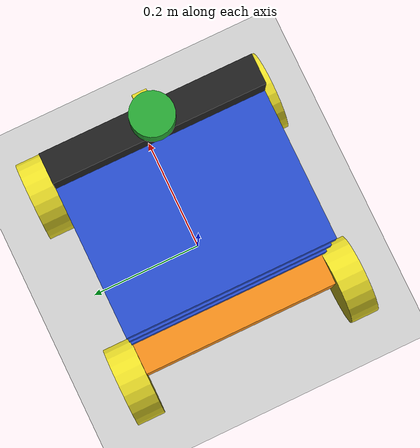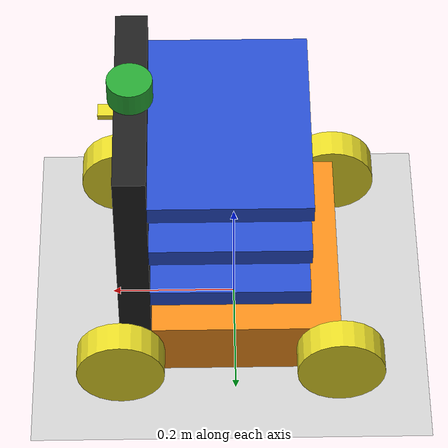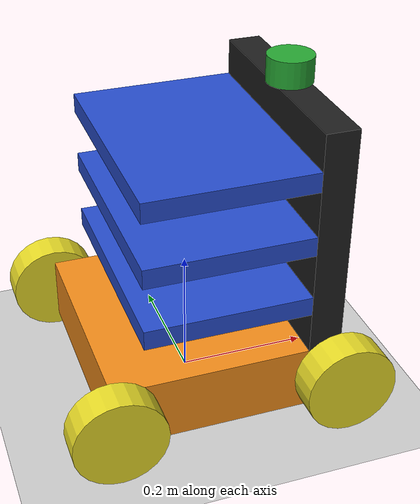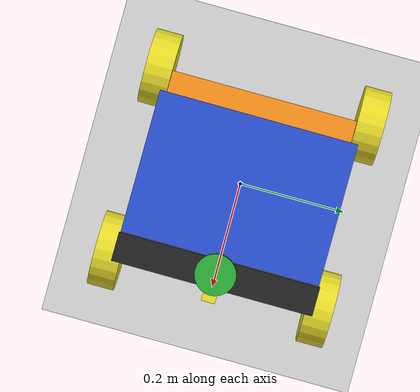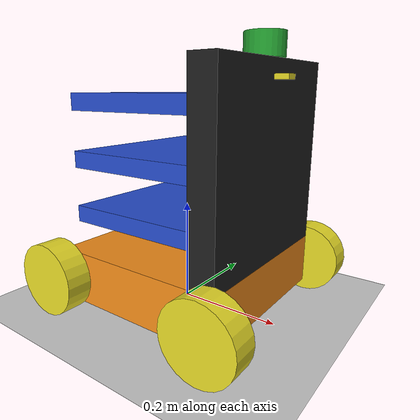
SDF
<sdf version="1.7">
 <world name="default">
  <light name="sun" type="directional">
   <pose>0 0 10 0 -0 0</pose>
   <diffuse>0.8 0.8 0.8 1</diffuse>
   <specular>0.2 0.2 0.2 1</specular>
   <attenuation>
    <range>1000</range>
    <constant>0.9</constant>
    <linear>0.01</linear>
    <quadratic>0.001</quadratic>
   </attenuation>
   <direction>-0.5 0.1 -0.9</direction>
   <spot><inner_angle>0</inner_angle><outer_angle>0</outer_angle><falloff>0</falloff></spot>
  </light>
  <model name="ground_plane">
   <static>1</static>
   <link name="link">
    <collision name="collision">
     <geometry><plane><normal>0 0 1</normal><size>100 100</size></plane></geometry>
     <surface><friction><ode><mu>100</mu><mu2>50</mu2></ode></friction></surface>
    </collision>
    <visual name="visual">
     <cast_shadows>0</cast_shadows>
     <geometry><plane><normal>0 0 1</normal><size>100 100</size></plane></geometry>
     <material>
      <script><uri>file://media/materials/scripts/gazebo.material</uri><name>Gazebo/Grey</name></script>
     </material>
    </visual>
   </link>
  </model>
  <gravity>0 0 -9.8</gravity>
  <magnetic_field>6e-06 2.3e-05 -4.2e-05</magnetic_field>
  <atmosphere type="adiabatic"/>
  <physics type="ode">
   <max_step_size>0.001</max_step_size>
   <real_time_factor>1</real_time_factor>
   <real_time_update_rate>1000</real_time_update_rate>
  </physics>
  <scene><ambient>0.4 0.4 0.4 1</ambient><background>0.7 0.7 0.7 1</background><shadows>1</shadows></scene>
  <audio><device>default</device></audio>
  <spherical_coordinates>
   <surface_model>EARTH_WGS84</surface_model>
   <latitude_deg>0</latitude_deg>
   <longitude_deg>0</longitude_deg>
   <elevation>0</elevation>
   <heading_deg>0</heading_deg>
  </spherical_coordinates>
  <model name="service_robot">
   <link name="base_link">
    <inertial>
     <pose>0.001828 -3e-06 0.058688 0 -0 0</pose>
     <mass>8.513</mass>
     <inertia>
      <ixx>0.170735</ixx>
      <ixy>3.70613e-06</ixy>
      <ixz>-0.00559479</ixz>
      <iyy>0.173062</iyy>
      <iyz>8.91057e-06</iyz>
      <izz>0.117827</izz>
     </inertia>
    </inertial>
    <collision name="base_link_collision">
     <geometry><box><size>0.35 0.35 0.1</size></box></geometry>
     <surface>
      <contact><ode><kp>1e+06</kp><kd>100</kd></ode></contact>
      <friction><ode><mu>0.5</mu><mu2>0.5</mu2></ode></friction>
     </surface>
    </collision>
    <collision name="base_link_fixed_joint_lump__body_collision_1">
     <pose>0.15 -0.000239 0.225 0 -0 3.14</pose>
     <geometry><box><size>0.05 0.35 0.35</size></box></geometry>
     <surface>
      <contact><ode><kp>1e+06</kp><kd>100</kd></ode></contact>
      <friction><ode><mu>0.2</mu><mu2>0.2</mu2></ode></friction>
     </surface>
    </collision>
    <collision name="base_link_fixed_joint_lump__camera_link_collision_2">
     <pose>0.1875 -0.000299 0.37 0 -0 3.14</pose>
     <geometry><box><size>0.025 0.024 0.009</size></box></geometry>
    </collision>
    <collision name="base_link_fixed_joint_lump__front_plate_bottom_collision_3">
     <pose>0 0 0.13 0 -0 3.14</pose>
     <geometry><box><size>0.25 0.35 0.03</size></box></geometry>
    </collision>
    <collision name="base_link_fixed_joint_lump__front_plate_middle_collision_4">
     <pose>0 0 0.23 0 -0 3.14</pose>
     <geometry><box><size>0.25 0.35 0.03</size></box></geometry>
    </collision>
    <collision name="base_link_fixed_joint_lump__front_plate_top_collision_5">
     <pose>0 0 0.33 0 -0 3.14</pose>
     <geometry><box><size>0.25 0.35 0.03</size></box></geometry>
    </collision>
    <collision name="base_link_fixed_joint_lump__lidar_link_collision_6">
     <pose>0.15 -0.000239 0.42 0 -0 3.14</pose>
     <geometry><cylinder><length>0.04</length><radius>0.035</radius></cylinder></geometry>
    </collision>
    <visual name="base_link_visual">
     <geometry><box><size>0.35 0.35 0.1</size></box></geometry>
     <material>
      <script><name>Gazebo/Orange</name><uri>file://media/materials/scripts/gazebo.material</uri></script>
     </material>
    </visual>
    <visual name="base_link_fixed_joint_lump__body_visual_1">
     <pose>0.15 -0.000239 0.225 0 -0 3.14</pose>
     <geometry><box><size>0.05 0.35 0.35</size></box></geometry>
     <material>
      <script><name>Gazebo/Black</name><uri>file://media/materials/scripts/gazebo.material</uri></script>
     </material>
    </visual>
    <visual name="base_link_fixed_joint_lump__camera_link_visual_2">
     <pose>0.1875 -0.000299 0.37 0 -0 3.14</pose>
     <geometry><box><size>0.025 0.024 0.009</size></box></geometry>
     <material>
      <script><name>Gazebo/Yellow</name><uri>file://media/materials/scripts/gazebo.material</uri></script>
     </material>
    </visual>
    <visual name="base_link_fixed_joint_lump__front_plate_bottom_visual_3">
     <pose>0 0 0.13 0 -0 3.14</pose>
     <geometry><box><size>0.25 0.35 0.03</size></box></geometry>
     <material>
      <script><name>Gazebo/Blue</name><uri>file://media/materials/scripts/gazebo.material</uri></script>
     </material>
    </visual>
    <visual name="base_link_fixed_joint_lump__front_plate_middle_visual_4">
     <pose>0 0 0.23 0 -0 3.14</pose>
     <geometry><box><size>0.25 0.35 0.03</size></box></geometry>
     <material>
      <script><name>Gazebo/Blue</name><uri>file://media/materials/scripts/gazebo.material</uri></script>
     </material>
    </visual>
    <visual name="base_link_fixed_joint_lump__front_plate_top_visual_5">
     <pose>0 0 0.33 0 -0 3.14</pose>
     <geometry><box><size>0.25 0.35 0.03</size></box></geometry>
     <material>
      <script><name>Gazebo/Blue</name><uri>file://media/materials/scripts/gazebo.material</uri></script>
     </material>
    </visual>
    <visual name="base_link_fixed_joint_lump__lidar_link_visual_6">
     <pose>0.15 -0.000239 0.42 0 -0 3.14</pose>
     <geometry><cylinder><length>0.04</length><radius>0.035</radius></cylinder></geometry>
     <material>
      <script><name>Gazebo/Green</name><uri>file://media/materials/scripts/gazebo.material</uri></script>
     </material>
    </visual>
    <visual name="base_link_fixed_joint_lump__imu_link_visual_7">
     <pose>0 0 0.05 0 -0 0</pose>
     <geometry><box><size>0.02 0.02 0.02</size></box></geometry>
    </visual>
    <sensor name="pi_camera" type="camera">
     <update_rate>30</update_rate>
     <camera name="head">
      <horizontal_fov>1.0856</horizontal_fov>
      <image><width>1920</width><height>1080</height><format>R8G8B8</format></image>
      <clip><near>0.03</near><far>100</far></clip>
      <noise><type>gaussian</type><mean>0</mean><stddev>0.007</stddev></noise>
     </camera>
     <plugin name="camera_controller" filename="libgazebo_ros_camera.so">
      <alwaysOn>1</alwaysOn>
      <updateRate>30.0</updateRate>
      <cameraName>pi_camera</cameraName>
      <imageTopicName>image_raw</imageTopicName>
      <cameraInfoTopicName>camera_info</cameraInfoTopicName>
      <frameName>camera_link</frameName>
     </plugin>
     <pose>0.1875 -0.000299 0.37 0 -0 3.14</pose>
    </sensor>
    <sensor name="lidar" type="ray">
     <always_on>1</always_on>
     <visualize>1</visualize>
     <update_rate>5</update_rate>
     <ray>
      <scan>
       <horizontal>
        <samples>360</samples>
        <resolution>1</resolution>
        <min_angle>0</min_angle>
        <max_angle>6.28319</max_angle>
       </horizontal>
       <vertical><samples>1</samples><min_angle>0</min_angle><max_angle>0</max_angle></vertical>
      </scan>
      <range><min>0.12</min><max>12</max><resolution>0.015</resolution></range>
      <noise><type>gaussian</type><mean>0</mean><stddev>0.01</stddev></noise>
     </ray>
     <plugin name="scan" filename="libgazebo_ros_ray_sensor.so">
      <ros><remapping>~/out:=scan</remapping></ros>
      <output_type>sensor_msgs/LaserScan</output_type>
      <frame_name>lidar_link</frame_name>
     </plugin>
     <pose>0.15 -0.000239 0.42 0 -0 3.14</pose>
    </sensor>
    <sensor name="imu_sensor" type="imu">
     <always_on>1</always_on>
     <update_rate>100</update_rate>
     <visualize>1</visualize>
     <imu>
      <angular_velocity>
       <x>
        <noise type="gaussian">
         <mean>0</mean>
         <stddev>0.00033</stddev>
         <bias_mean>0</bias_mean>
         <bias_stddev>0.0002</bias_stddev>
        </noise>
       </x>
       <y>
        <noise type="gaussian">
         <mean>0</mean>
         <stddev>0.00033</stddev>
         <bias_mean>0</bias_mean>
         <bias_stddev>0.0002</bias_stddev>
        </noise>
       </y>
       <z>
        <noise type="gaussian">
         <mean>0</mean>
         <stddev>0.00033</stddev>
         <bias_mean>0</bias_mean>
         <bias_stddev>0.0002</bias_stddev>
        </noise>
       </z>
      </angular_velocity>
      <linear_acceleration>
       <x>
        <noise type="gaussian">
         <mean>0</mean>
         <stddev>0.04</stddev>
         <bias_mean>0</bias_mean>
         <bias_stddev>0.005</bias_stddev>
        </noise>
       </x>
       <y>
        <noise type="gaussian">
         <mean>0</mean>
         <stddev>0.04</stddev>
         <bias_mean>0</bias_mean>
         <bias_stddev>0.005</bias_stddev>
        </noise>
       </y>
       <z>
        <noise type="gaussian">
         <mean>0</mean>
         <stddev>0.04</stddev>
         <bias_mean>0</bias_mean>
         <bias_stddev>0.006</bias_stddev>
        </noise>
       </z>
      </linear_acceleration>
     </imu>
     <plugin name="imu_plugin" filename="libgazebo_ros_imu_sensor.so">
      <ros><namespace>/</namespace><remapping>~/out:=imu/data</remapping></ros>
      <initial_orientation_as_reference>0</initial_orientation_as_reference>
      <frame_name>imu_link</frame_name>
      <gaussian_noise>0.00033</gaussian_noise>
      <updateRate>100.0</updateRate>
      <bodyName>imu_link</bodyName>
      <topicName>imu/data</topicName>
      <serviceName>imu_service</serviceName>
      <xyzOffset>0 0 0</xyzOffset>
      <rpyOffset>0 0 0</rpyOffset>
     </plugin>
     <pose>0 0 0.05 0 -0 0</pose>
    </sensor>
   </link>
   <joint name="wheel_back_left_joint" type="revolute">
    <pose relative_to="base_link">-0.175 0.2 0 -1.5708 0 0</pose>
    <parent>base_link</parent>
    <child>wheel_back_left</child>
    <axis>
     <xyz>0 0 1</xyz>
     <limit><effort>0.32</effort><velocity>0.44</velocity><lower>-1e+16</lower><upper>1e+16</upper></limit>
     <dynamics>
      <damping>0.1</damping>
      <friction>0.1</friction>
      <spring_reference>0</spring_reference>
      <spring_stiffness>0</spring_stiffness>
     </dynamics>
    </axis>
    <physics>
     <provide_feedback>1</provide_feedback>
     <ode>
      <implicit_spring_damper>1</implicit_spring_damper>
      <cfm_damping>1</cfm_damping>
      <limit><cfm>0</cfm><erp>0.2</erp></limit>
      <provide_feedback>1</provide_feedback>
     </ode>
    </physics>
   </joint>
   <link name="wheel_back_left">
    <pose relative_to="wheel_back_left_joint">0 0 0 0 -0 0</pose>
    <inertial>
     <mass>0.375</mass>
     <inertia><ixx>0.001</ixx><ixy>0</ixy><ixz>0</ixz><iyy>0.001</iyy><iyz>0</iyz><izz>0.001</izz></inertia>
    </inertial>
    <collision name="wheel_back_left_collision">
     <geometry><cylinder><length>0.05</length><radius>0.07</radius></cylinder></geometry>
     <surface>
      <contact><ode><kp>1e+06</kp><kd>100</kd></ode></contact>
      <friction><ode><mu>0.7</mu><mu2>0.3</mu2><fdir1>1 0 0</fdir1></ode></friction>
     </surface>
    </collision>
    <visual name="wheel_back_left_visual">
     <geometry><cylinder><length>0.05</length><radius>0.07</radius></cylinder></geometry>
     <material>
      <script><name>Gazebo/Yellow</name><uri>file://media/materials/scripts/gazebo.material</uri></script>
     </material>
    </visual>
   </link>
   <joint name="wheel_back_right_joint" type="revolute">
    <pose relative_to="base_link">-0.175 -0.2 0 -1.5708 0 0</pose>
    <parent>base_link</parent>
    <child>wheel_back_right</child>
    <axis>
     <xyz>0 0 1</xyz>
     <limit><effort>0.32</effort><velocity>0.44</velocity><lower>-1e+16</lower><upper>1e+16</upper></limit>
     <dynamics>
      <damping>0.1</damping>
      <friction>0.1</friction>
      <spring_reference>0</spring_reference>
      <spring_stiffness>0</spring_stiffness>
     </dynamics>
    </axis>
    <physics>
     <provide_feedback>1</provide_feedback>
     <ode>
      <implicit_spring_damper>1</implicit_spring_damper>
      <cfm_damping>1</cfm_damping>
      <limit><cfm>0</cfm><erp>0.2</erp></limit>
      <provide_feedback>1</provide_feedback>
     </ode>
    </physics>
   </joint>
   <link name="wheel_back_right">
    <pose relative_to="wheel_back_right_joint">0 0 0 0 -0 0</pose>
    <inertial>
     <mass>0.375</mass>
     <inertia><ixx>0.001</ixx><ixy>0</ixy><ixz>0</ixz><iyy>0.001</iyy><iyz>0</iyz><izz>0.001</izz></inertia>
    </inertial>
    <collision name="wheel_back_right_collision">
     <geometry><cylinder><length>0.05</length><radius>0.07</radius></cylinder></geometry>
     <surface>
      <contact><ode><kp>1e+06</kp><kd>100</kd></ode></contact>
      <friction><ode><mu>0.7</mu><mu2>0.3</mu2><fdir1>1 0 0</fdir1></ode></friction>
     </surface>
    </collision>
    <visual name="wheel_back_right_visual">
     <geometry><cylinder><length>0.05</length><radius>0.07</radius></cylinder></geometry>
     <material>
      <script><name>Gazebo/Yellow</name><uri>file://media/materials/scripts/gazebo.material</uri></script>
     </material>
    </visual>
   </link>
   <joint name="wheel_front_left_joint" type="revolute">
    <pose relative_to="base_link">0.175 0.2 0 -1.5708 0 0</pose>
    <parent>base_link</parent>
    <child>wheel_front_left</child>
    <axis>
     <xyz>0 0 1</xyz>
     <limit><effort>0.32</effort><velocity>0.44</velocity><lower>-1e+16</lower><upper>1e+16</upper></limit>
     <dynamics>
      <damping>0.1</damping>
      <friction>0.1</friction>
      <spring_reference>0</spring_reference>
      <spring_stiffness>0</spring_stiffness>
     </dynamics>
    </axis>
    <physics>
     <provide_feedback>1</provide_feedback>
     <ode>
      <implicit_spring_damper>1</implicit_spring_damper>
      <cfm_damping>1</cfm_damping>
      <limit><cfm>0</cfm><erp>0.2</erp></limit>
      <provide_feedback>1</provide_feedback>
     </ode>
    </physics>
   </joint>
   <link name="wheel_front_left">
    <pose relative_to="wheel_front_left_joint">0 0 0 0 -0 0</pose>
    <inertial>
     <mass>0.375</mass>
     <inertia><ixx>0.0005</ixx><ixy>0</ixy><ixz>0</ixz><iyy>0.0005</iyy><iyz>0</iyz><izz>0.0009</izz></inertia>
    </inertial>
    <collision name="wheel_front_left_collision">
     <geometry><cylinder><length>0.05</length><radius>0.07</radius></cylinder></geometry>
     <surface>
      <contact><ode><kp>1e+06</kp><kd>100</kd></ode></contact>
      <friction><ode><mu>0.7</mu><mu2>0.3</mu2><fdir1>1 0 0</fdir1></ode></friction>
     </surface>
    </collision>
    <visual name="wheel_front_left_visual">
     <geometry><cylinder><length>0.05</length><radius>0.07</radius></cylinder></geometry>
     <material>
      <script><name>Gazebo/Yellow</name><uri>file://media/materials/scripts/gazebo.material</uri></script>
     </material>
    </visual>
   </link>
   <joint name="wheel_front_right_joint" type="revolute">
    <pose relative_to="base_link">0.175 -0.2 0 -1.5708 0 0</pose>
    <parent>base_link</parent>
    <child>wheel_front_right</child>
    <axis>
     <xyz>0 0 1</xyz>
     <limit><effort>0.32</effort><velocity>0.44</velocity><lower>-1e+16</lower><upper>1e+16</upper></limit>
     <dynamics>
      <damping>0.1</damping>
      <friction>0.1</friction>
      <spring_reference>0</spring_reference>
      <spring_stiffness>0</spring_stiffness>
     </dynamics>
    </axis>
    <physics>
     <provide_feedback>1</provide_feedback>
     <ode>
      <implicit_spring_damper>1</implicit_spring_damper>
      <cfm_damping>1</cfm_damping>
      <limit><cfm>0</cfm><erp>0.2</erp></limit>
      <provide_feedback>1</provide_feedback>
     </ode>
    </physics>
   </joint>
   <link name="wheel_front_right">
    <pose relative_to="wheel_front_right_joint">0 0 0 0 -0 0</pose>
    <inertial>
     <mass>0.375</mass>
     <inertia><ixx>0.001</ixx><ixy>0</ixy><ixz>0</ixz><iyy>0.001</iyy><iyz>0</iyz><izz>0.001</izz></inertia>
    </inertial>
    <collision name="wheel_front_right_collision">
     <geometry><cylinder><length>0.05</length><radius>0.07</radius></cylinder></geometry>
     <surface>
      <contact><ode><kp>1e+06</kp><kd>100</kd></ode></contact>
      <friction><ode><mu>0.7</mu><mu2>0.3</mu2><fdir1>1 0 0</fdir1></ode></friction>
     </surface>
    </collision>
    <visual name="wheel_front_right_visual">
     <geometry><cylinder><length>0.05</length><radius>0.07</radius></cylinder></geometry>
     <material>
      <script><name>Gazebo/Yellow</name><uri>file://media/materials/scripts/gazebo.material</uri></script>
     </material>
    </visual>
   </link>
   <static>0</static>
   <plugin name="gazebo_ros2_control" filename="libgazebo_ros2_control.so">
    <robot_param>robot_description</robot_param>
    <robot_param_node>robot_state_publisher</robot_param_node>
    <parameters>/home/ammar/Robotics/Graduation_Project/ACSAR_ws/install/robot_control/share/robot_control/config/diff_controller.yaml</parameters>
   </plugin>
   <pose>0.007772 -0 0.069986 0 1e-06 0</pose>
  </model>
 </world>
</sdf>
